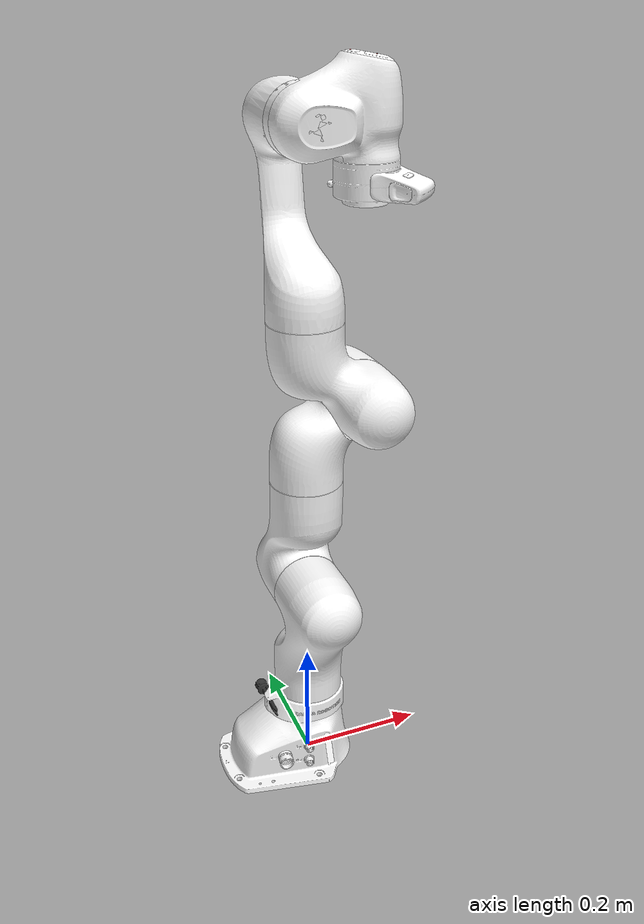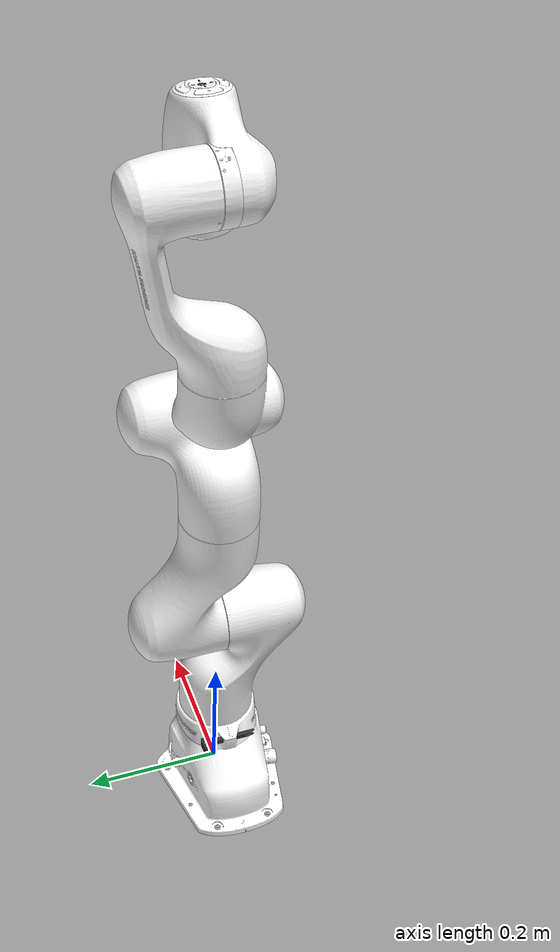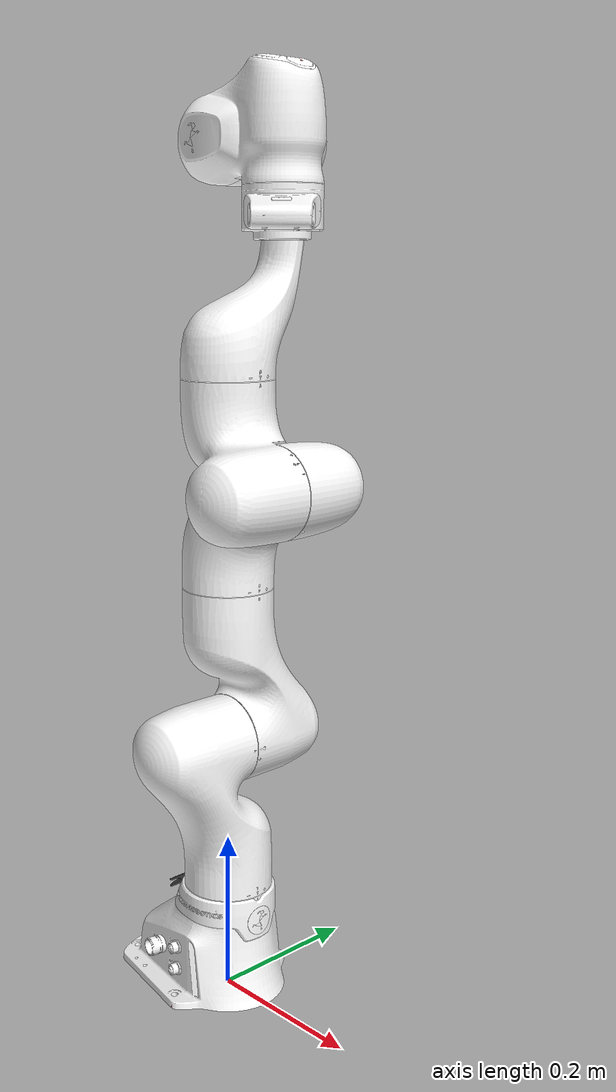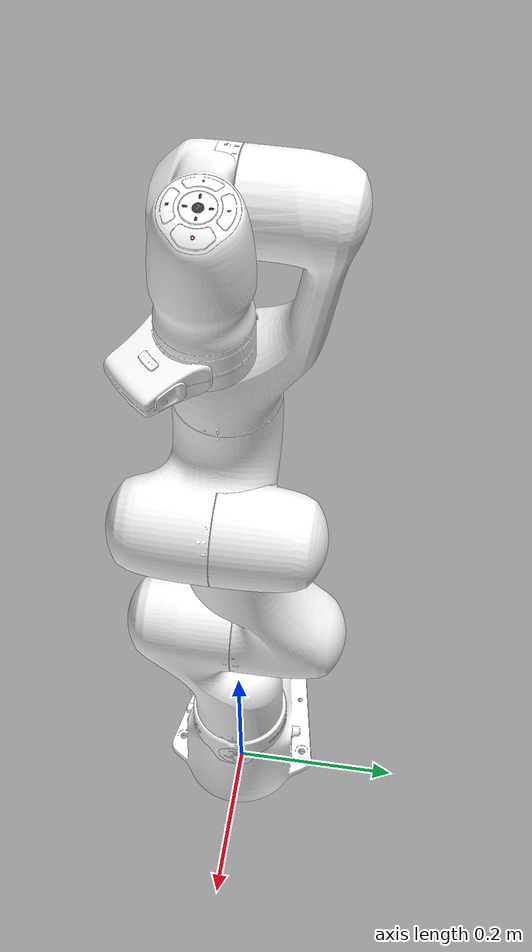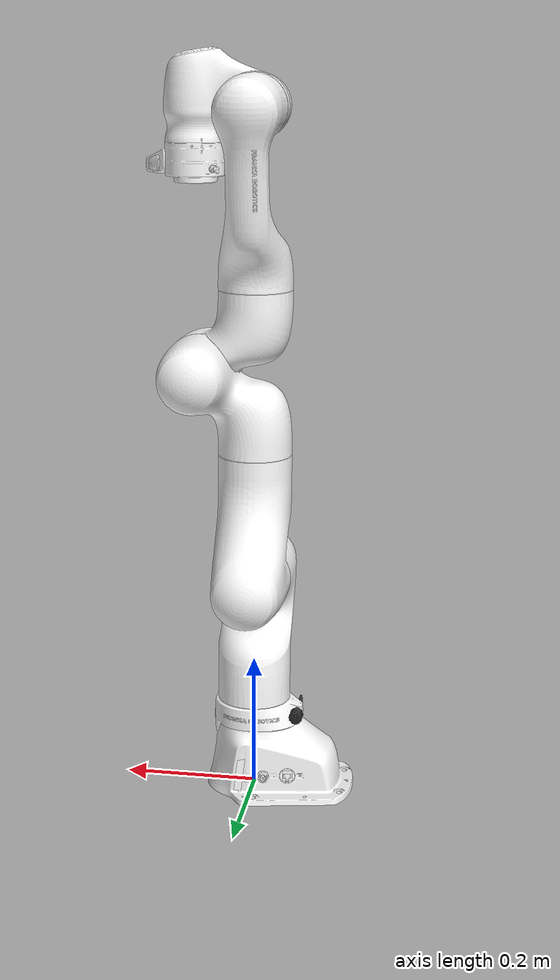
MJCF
<mujoco model="fr3v2">
  <compiler angle="radian" meshdir="../fr3v2_assets" />

  <default>
    <default class="fr3v2">
      <!-- Overwritten in joints 5, 6, and 7. -->
      <joint damping="0.21" armature="0.195" frictionloss="1.137"/>
      <default class="visual">
        <geom type="mesh" group="2" contype="0" conaffinity="0"/>
      </default>
      <default class="collision">
        <geom type="mesh" group="3"/>
      </default>
      <site size="0.001" rgba="0.5 0.5 0.5 0.3" group="4"/>
    </default>
  </default>

  <asset>
    <material name="black" rgba=".2 .2 .2 1"/>
    <material name="white" rgba="1 1 1 1"/>
    <material name="red" rgba="1 0.072272 0.039546 1"/>
    <material name="gray" rgba="0.863156 0.863156 0.863157 1"/>
    <material name="button_green" rgba="0.102241 0.571125 0.102242 1"/>
    <material name="button_red" rgba="0.520996 0.008023 0.013702 1"/>
    <material name="button_blue" rgba="0.024157 0.445201 0.737911 1"/>

    <mesh file="link0_0.stl"/>
    <mesh file="link0_1.stl"/>
    <mesh file="link0_2.stl"/>
    <mesh file="link0_3.stl"/>
    <mesh file="link0_4.stl"/>
    <mesh file="link0_5.stl"/>
    <mesh file="link1_3.stl"/>
    <mesh file="link2_3.stl"/>
    <mesh file="link3_3.stl"/>
    <mesh file="link4_3.stl"/>
    <mesh file="link5_3.stl"/>
    <mesh file="link5_4.stl"/>
    <mesh file="link6_0.stl"/>
    <mesh file="link6_1.stl"/>
    <mesh file="link6_2.stl"/>
    <mesh file="link6_3.stl"/>
    <mesh file="link6_4.stl"/>
    <mesh file="link6_5.stl"/>
    <mesh file="link6_6.stl"/>
    <mesh file="link6_7.stl"/>
    <mesh file="link6_8.stl"/>
    <mesh file="link6_9.stl"/>
    <mesh file="link7_0.stl"/>
    <mesh file="link7_1.stl"/>
    <mesh file="link7_2.stl"/>
    <mesh file="link7_3.stl"/>
    <mesh file="link7_4.stl"/>
    <mesh file="link7_5.stl"/>
    <mesh file="link7_6.stl"/>

    <mesh name="link0_coll" file="link0.stl"/>
    <mesh name="link1_coll" file="link1.stl"/>
    <mesh name="link2_coll" file="link2.stl"/>
    <mesh name="link3_coll" file="link3.stl"/>
    <mesh name="link4_coll" file="link4.stl"/>
    <mesh name="link5_coll" file="link5.stl"/>
    <mesh name="link6_coll" file="link6.stl"/>
    <mesh name="link7_coll" file="link7.stl"/>
  </asset>

  <worldbody>
    <body name="base" childclass="fr3v2">
      <body name="fr3v2_link0">
        <geom mesh="link0_0" material="black" class="visual"/>
        <geom mesh="link0_1" material="white" class="visual"/>
        <geom mesh="link0_2" material="white" class="visual"/>
        <geom mesh="link0_3" material="white" class="visual"/>
        <geom mesh="link0_4" material="white" class="visual"/>
        <geom mesh="link0_5" material="red" class="visual"/>
        <geom name="fr3v2_link0_collision" mesh="link0_coll" class="collision"/>
        <inertial pos="-0.0172 0.0004 0.0745" quat="0.661377 -0.250161 -0.250161 0.661377" mass="3.85"
          diaginertia="0.0115 0.0107656 0.00673444"/>
        <body name="fr3v2_link1" pos="0 0 0.333">
          <inertial pos="-0.00458 0.027016 -0.0618" quat="0.989811 0.110789 0.00992127 0.0888923" mass="2.4377"
            diaginertia="0.0233003 0.0222611 0.00463865"/>
          <joint name="fr3v2_joint1" pos="0 0 0" axis="0 0 1" range="-2.7437 2.7437"
            damping="450" frictionloss="0.2"/>
          <geom name="fr3v2_link1_collision" class="collision" mesh="link1_coll"/>
          <geom mesh="link1_3" material="white" class="visual"/>
          <body name="fr3v2_link2" quat="0.707107 -0.707107 0 0">
            <inertial pos="-0.003473 -0.168509 -0.010479" quat="0.644329 0.758803 -0.0323054 0.0895283" mass="2.2375"
              diaginertia="0.0192001 0.0173406 0.0052593"/>
            <joint name="fr3v2_joint2" pos="0 0 0" axis="0 0 1" range="-1.7837 1.7837"
              damping="450" frictionloss="0.2"/>
            <geom name="fr3v2_link2_collision" class="collision" mesh="link2_coll"/>
            <geom mesh="link2_3" material="white" class="visual"/>
            <body name="fr3v2_link3" pos="0 -0.316 0" quat="0.707107 0.707107 0 0">
              <inertial pos="0.092968 0.01801 0.033533" quat="0.877348 -0.0280595 -0.265819 0.398514" mass="2.18579"
                diaginertia="0.0146052 0.0104212 0.00447362"/>
              <joint name="fr3v2_joint3" pos="0 0 0" axis="0 0 1" range="-2.9007 2.9007"
                damping="450" frictionloss="0.2"/>
              <geom name="fr3v2_link3_collision" class="collision" mesh="link3_coll"/>
              <geom mesh="link3_3" material="white" class="visual"/>
              <body name="fr3v2_link4" pos="0.0825 0 0" quat="0.707107 0.707107 0 0">
                <inertial pos="-0.068745 0.092947 0.011195" quat="0.725019 0.567552 -0.379628 -0.0900828" mass="2.17587"
                  diaginertia="0.0126388 0.00973606 0.00442618"/>
                <joint name="fr3v2_joint4" pos="0 0 0" axis="0 0 1" range="-3.0421 -0.1518"
                  damping="450" frictionloss="0.2"/>
                <geom name="fr3v2_link4_collision" class="collision" mesh="link4_coll"/>
                <geom mesh="link4_3" material="white" class="visual"/>
                <body name="fr3v2_link5" pos="-0.0825 0.384 0" quat="0.707107 -0.707107 0 0">
                  <inertial pos="-0.004197 0.010257 -0.058103" quat="0.993747 -0.0901363 0.0101557 0.0651102"
                    mass="2.17482" diaginertia="0.0318998 0.0305191 0.0038801"/>
                  <joint name="fr3v2_joint5" pos="0 0 0" axis="0 0 1" range="-2.8065 2.8065"
                    damping="200" frictionloss="0.2"/>
                  <geom name="fr3v2_link5_collision" class="collision" mesh="link5_coll"/>
                  <geom mesh="link5_3" material="white" class="visual"/>
                  <geom mesh="link5_4" material="white" class="visual"/>
                  <body name="fr3v2_link6" quat="0.707107 0.707107 0 0">
                    <inertial pos="0.070958 -0.014137 -0.035324" quat="-0.141552 0.574736 0.130817 0.795317"
                      mass="1.56762" diaginertia="0.0047496 0.0041461 0.0024043"/>
                    <joint name="fr3v2_joint6" pos="0 0 0" axis="0 0 1" range="0.5445 4.5169"
                      damping="200" frictionloss="0.2"/>
                    <geom name="fr3v2_link6_collision" class="collision" mesh="link6_coll"/>
                    <geom mesh="link6_0" material="gray" class="visual"/>
                    <geom mesh="link6_1" material="white" class="visual"/>
                    <geom mesh="link6_2" material="white" class="visual"/>
                    <geom mesh="link6_3" material="gray" class="visual"/>
                    <geom mesh="link6_4" material="button_red" class="visual"/>
                    <geom mesh="link6_5" material="button_red" class="visual"/>
                    <geom mesh="link6_6" material="black" class="visual"/>
                    <geom mesh="link6_7" material="white" class="visual"/>
                    <geom mesh="link6_8" material="button_red" class="visual"/>
                    <geom mesh="link6_9" material="white" class="visual"/>
                    <body name="fr3v2_link7" pos="0.088 0 0" quat="0.707107 0.707107 0 0">
                      <inertial pos="0.008204 0.001156 0.061016" quat="0.70836 0.00347393 0.0424735 0.704564"
                        mass="0.682876" diaginertia="0.00110022 0.000899844 0.000699938"/>
                      <joint name="fr3v2_joint7" pos="0 0 0" axis="0 0 1" range="-3.0159 3.0159"
                        damping="200" frictionloss="0.2"/>
                      <geom name="fr3v2_link7_collision" class="collision" mesh="link7_coll"/>
                      <geom mesh="link7_0" material="white" class="visual"/>
                      <geom mesh="link7_1" material="white" class="visual"/>
                      <geom mesh="link7_2" material="white" class="visual"/>
                      <geom mesh="link7_3" material="white" class="visual"/>
                      <geom mesh="link7_4" material="white" class="visual"/>
                      <geom mesh="link7_5" material="white" class="visual"/>
                      <geom mesh="link7_6" material="white" class="visual"/>
                      <body name="fr3v2_link8" pos="0 0 0.107"/>
                    </body>
                  </body>
                </body>
              </body>
            </body>
          </body>
        </body>
      </body>
    </body>
  </worldbody>

  <actuator>
    <motor name="fr3v2_joint1" joint="fr3v2_joint1" forcerange="-87 87"/>
    <motor name="fr3v2_joint2" joint="fr3v2_joint2" forcerange="-87 87"/>
    <motor name="fr3v2_joint3" joint="fr3v2_joint3" forcerange="-87 87"/>
    <motor name="fr3v2_joint4" joint="fr3v2_joint4" forcerange="-87 87"/>
    <motor name="fr3v2_joint5" joint="fr3v2_joint5" forcerange="-12 12"/>
    <motor name="fr3v2_joint6" joint="fr3v2_joint6" forcerange="-12 12"/>
    <motor name="fr3v2_joint7" joint="fr3v2_joint7" forcerange="-12 12"/>
  </actuator>

  <keyframe>
    <key name="home" qpos="0 0 0 -1.57079 0 1.57079 -0.7853"/>
  </keyframe>

</mujoco>
